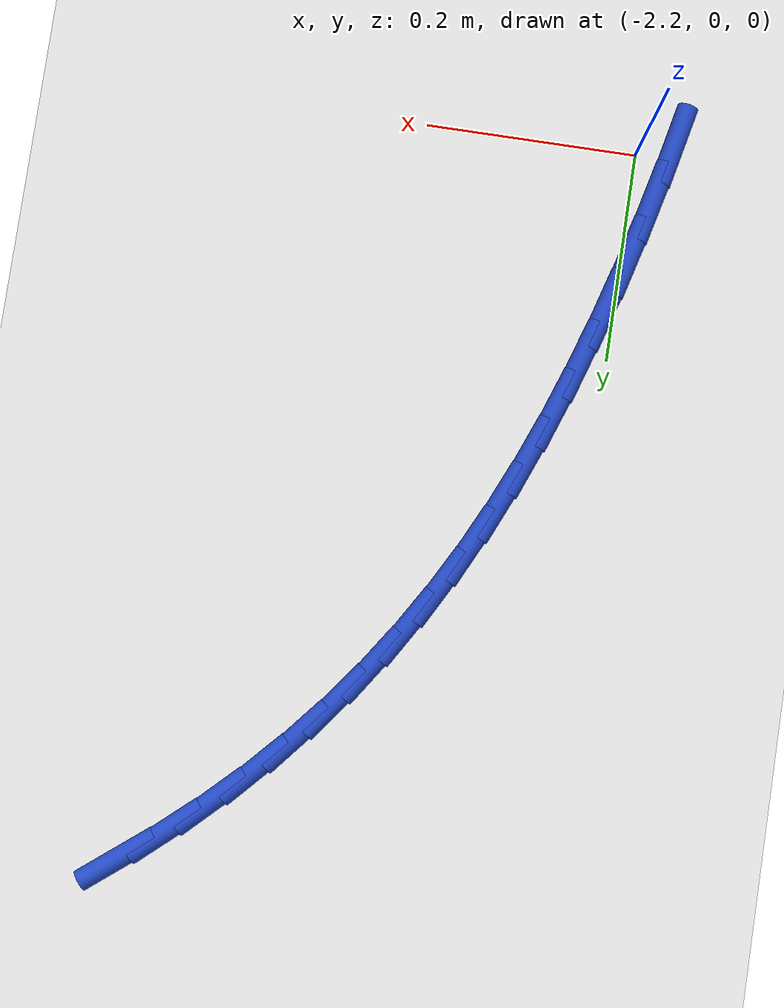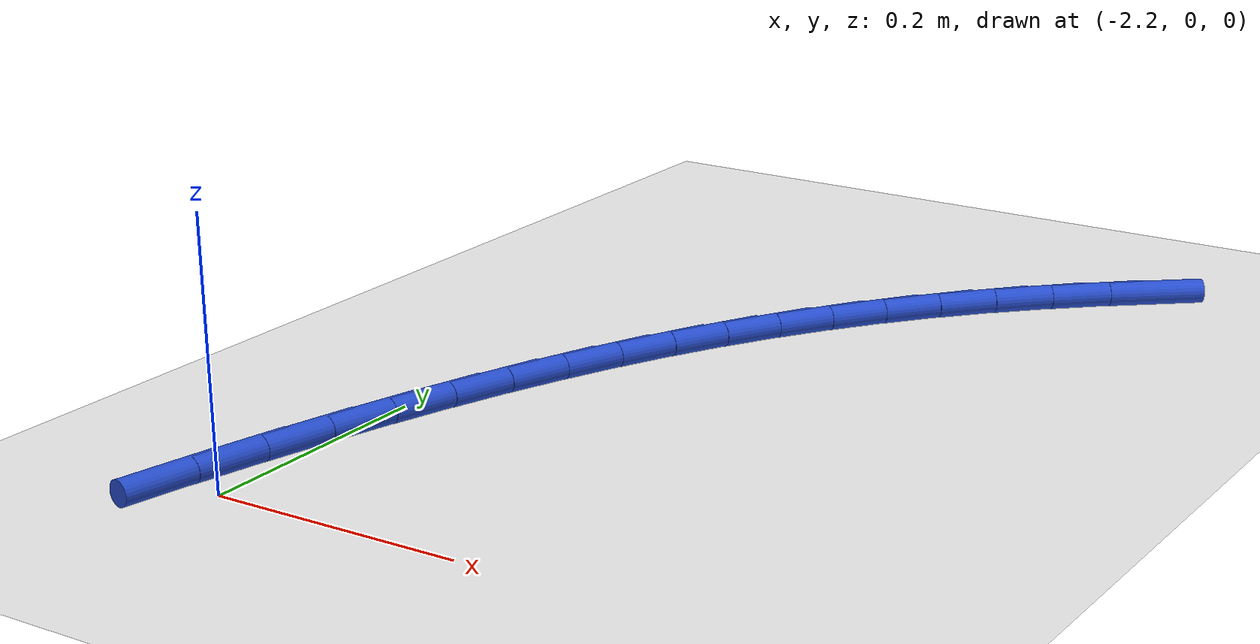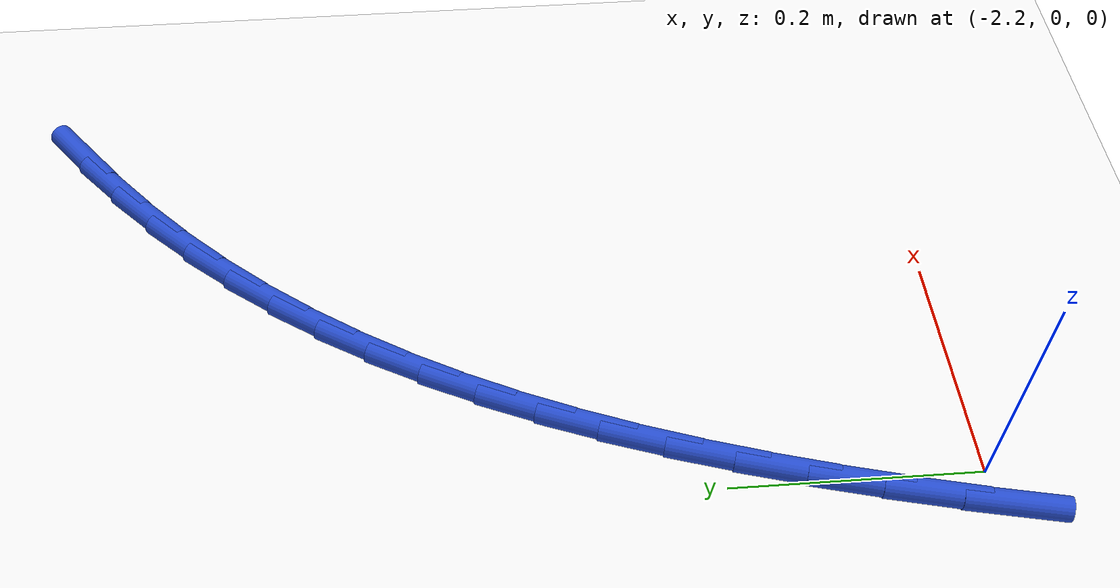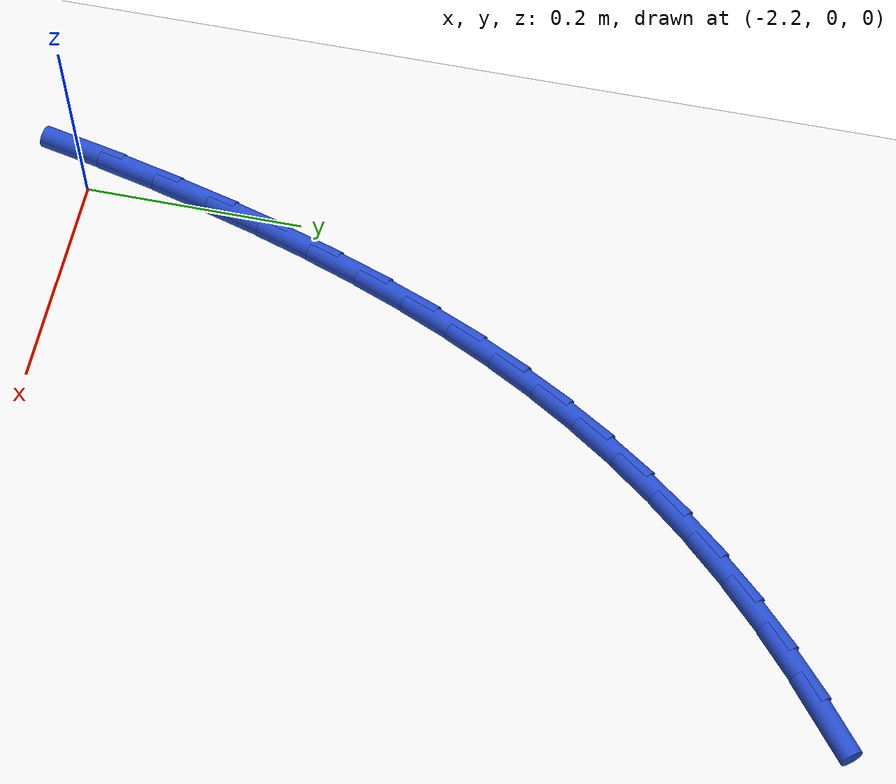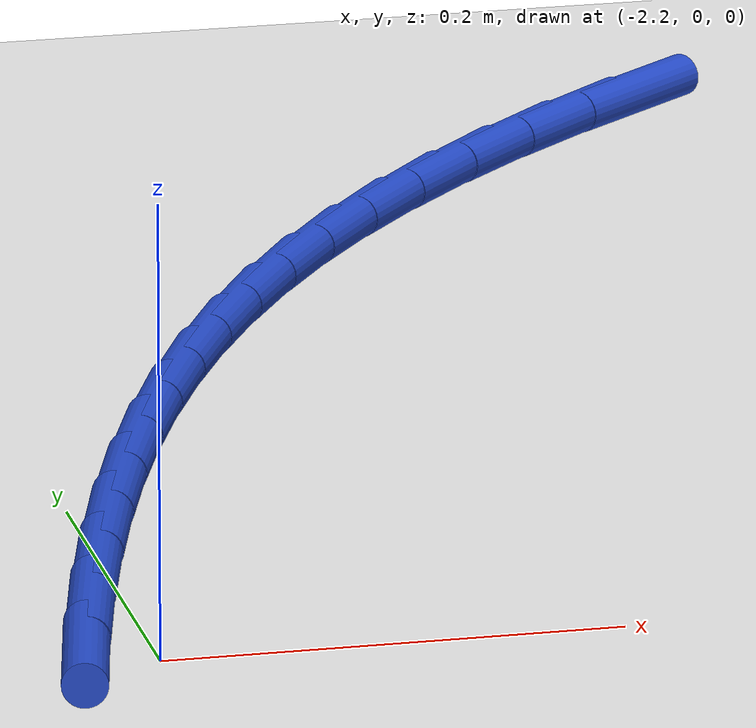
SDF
<sdf version="1.6">
 <world name="default">
  <model name="ground_plane">
   <static>1</static>
   <link name="link">
    <collision name="collision">
     <geometry><plane><normal>0 0 1</normal><size>100 100</size></plane></geometry>
     <surface><friction><ode><mu>100</mu><mu2>50</mu2></ode></friction></surface>
    </collision>
    <visual name="visual">
     <cast_shadows>0</cast_shadows>
     <geometry><plane><normal>0 0 1</normal><size>100 100</size></plane></geometry>
     <material>
      <script><uri>file://media/materials/scripts/gazebo.material</uri><name>Gazebo/WhiteGlow</name></script>
     </material>
    </visual>
   </link>
  </model>
  <model name="line">
   <link name="link_50">
    <pose>-1.8198266802403709 0.7233282383025506 0.01 0 1.57 0.6726121496878623</pose>
    <collision name="collision">
     <geometry><cylinder><radius>0.01</radius><length>0.08</length></cylinder></geometry>
    </collision>
    <visual name="visual">
     <material>
      <script><name>Gazebo/Blue</name><uri>file://media/materials/scripts/gazebo.material</uri></script>
     </material>
     <geometry><cylinder><radius>0.01</radius><length>0.08</length></cylinder></geometry>
    </visual>
   </link>
   <link name="link_51">
    <pose>-1.8590922676655257 0.6920526203002954 0.01 0 1.57 0.7215146821076641</pose>
    <collision name="collision">
     <geometry><cylinder><radius>0.01</radius><length>0.08</length></cylinder></geometry>
    </collision>
    <visual name="visual">
     <material>
      <script><name>Gazebo/Blue</name><uri>file://media/materials/scripts/gazebo.material</uri></script>
     </material>
     <geometry><cylinder><radius>0.01</radius><length>0.08</length></cylinder></geometry>
    </visual>
   </link>
   <link name="link_52">
    <pose>-1.8964386403735027 0.6591970997913577 0.01 0 1.57 0.7715987007077882</pose>
    <collision name="collision">
     <geometry><cylinder><radius>0.01</radius><length>0.08</length></cylinder></geometry>
    </collision>
    <visual name="visual">
     <material>
      <script><name>Gazebo/Blue</name><uri>file://media/materials/scripts/gazebo.material</uri></script>
     </material>
     <geometry><cylinder><radius>0.01</radius><length>0.08</length></cylinder></geometry>
    </visual>
   </link>
   <link name="link_53">
    <pose>-1.9316183514721983 0.6249751550480994 0.01 0 1.57 0.8232298959714698</pose>
    <collision name="collision">
     <geometry><cylinder><radius>0.01</radius><length>0.08</length></cylinder></geometry>
    </collision>
    <visual name="visual">
     <material>
      <script><name>Gazebo/Blue</name><uri>file://media/materials/scripts/gazebo.material</uri></script>
     </material>
     <geometry><cylinder><radius>0.01</radius><length>0.08</length></cylinder></geometry>
    </visual>
   </link>
   <link name="link_54">
    <pose>-1.9644818859466915 0.5895259994869505 0.01 0 1.57 0.8754490096621762</pose>
    <collision name="collision">
     <geometry><cylinder><radius>0.01</radius><length>0.08</length></cylinder></geometry>
    </collision>
    <visual name="visual">
     <material>
      <script><name>Gazebo/Blue</name><uri>file://media/materials/scripts/gazebo.material</uri></script>
     </material>
     <geometry><cylinder><radius>0.01</radius><length>0.08</length></cylinder></geometry>
    </visual>
   </link>
   <link name="link_55">
    <pose>-1.9951179968079762 0.5528081603052413 0.01 0 1.57 0.9274336104759239</pose>
    <collision name="collision">
     <geometry><cylinder><radius>0.01</radius><length>0.08</length></cylinder></geometry>
    </collision>
    <visual name="visual">
     <material>
      <script><name>Gazebo/Blue</name><uri>file://media/materials/scripts/gazebo.material</uri></script>
     </material>
     <geometry><cylinder><radius>0.01</radius><length>0.08</length></cylinder></geometry>
    </visual>
   </link>
   <link name="link_56">
    <pose>-2.023650981002434 0.5147532106040802 0.01 0 1.57 0.9784699401962835</pose>
    <collision name="collision">
     <geometry><cylinder><radius>0.01</radius><length>0.08</length></cylinder></geometry>
    </collision>
    <visual name="visual">
     <material>
      <script><name>Gazebo/Blue</name><uri>file://media/materials/scripts/gazebo.material</uri></script>
     </material>
     <geometry><cylinder><radius>0.01</radius><length>0.08</length></cylinder></geometry>
    </visual>
   </link>
   <link name="link_57">
    <pose>-2.0502051354764452 0.4752927234845747 0.01 0 1.57 1.0278846288194967</pose>
    <collision name="collision">
     <geometry><cylinder><radius>0.01</radius><length>0.08</length></cylinder></geometry>
    </collision>
    <visual name="visual">
     <material>
      <script><name>Gazebo/Blue</name><uri>file://media/materials/scripts/gazebo.material</uri></script>
     </material>
     <geometry><cylinder><radius>0.01</radius><length>0.08</length></cylinder></geometry>
    </visual>
   </link>
   <link name="link_58">
    <pose>-2.074904757176392 0.43435827204783317 0.01 0 1.57 1.0750819653784671</pose>
    <collision name="collision">
     <geometry><cylinder><radius>0.01</radius><length>0.08</length></cylinder></geometry>
    </collision>
    <visual name="visual">
     <material>
      <script><name>Gazebo/Blue</name><uri>file://media/materials/scripts/gazebo.material</uri></script>
     </material>
     <geometry><cylinder><radius>0.01</radius><length>0.08</length></cylinder></geometry>
    </visual>
   </link>
   <link name="link_59">
    <pose>-2.0978741430486543 0.3918814293949631 0.01 0 1.57 1.119570774490355</pose>
    <collision name="collision">
     <geometry><cylinder><radius>0.01</radius><length>0.08</length></cylinder></geometry>
    </collision>
    <visual name="visual">
     <material>
      <script><name>Gazebo/Blue</name><uri>file://media/materials/scripts/gazebo.material</uri></script>
     </material>
     <geometry><cylinder><radius>0.01</radius><length>0.08</length></cylinder></geometry>
    </visual>
   </link>
   <link name="link_60">
    <pose>-2.119237590039615 0.3477937686270733 0.01 0 1.57 1.1609786585416302</pose>
    <collision name="collision">
     <geometry><cylinder><radius>0.01</radius><length>0.08</length></cylinder></geometry>
    </collision>
    <visual name="visual">
     <material>
      <script><name>Gazebo/Blue</name><uri>file://media/materials/scripts/gazebo.material</uri></script>
     </material>
     <geometry><cylinder><radius>0.01</radius><length>0.08</length></cylinder></geometry>
    </visual>
   </link>
   <link name="link_61">
    <pose>-2.139119395095654 0.30202686284527075 0.01 0 1.57 1.1990539784446084</pose>
    <collision name="collision">
     <geometry><cylinder><radius>0.01</radius><length>0.08</length></cylinder></geometry>
    </collision>
    <visual name="visual">
     <material>
      <script><name>Gazebo/Blue</name><uri>file://media/materials/scripts/gazebo.material</uri></script>
     </material>
     <geometry><cylinder><radius>0.01</radius><length>0.08</length></cylinder></geometry>
    </visual>
   </link>
   <link name="link_62">
    <pose>-2.157643855163153 0.2545122851506643 0.01 0 1.57 1.2336579102944303</pose>
    <collision name="collision">
     <geometry><cylinder><radius>0.01</radius><length>0.08</length></cylinder></geometry>
    </collision>
    <visual name="visual">
     <material>
      <script><name>Gazebo/Blue</name><uri>file://media/materials/scripts/gazebo.material</uri></script>
     </material>
     <geometry><cylinder><radius>0.01</radius><length>0.08</length></cylinder></geometry>
    </visual>
   </link>
   <link name="link_63">
    <pose>-2.174935267188493 0.2051816086443611 0.01 0 1.57 1.2647498727843163</pose>
    <collision name="collision">
     <geometry><cylinder><radius>0.01</radius><length>0.08</length></cylinder></geometry>
    </collision>
    <visual name="visual">
     <material>
      <script><name>Gazebo/Blue</name><uri>file://media/materials/scripts/gazebo.material</uri></script>
     </material>
     <geometry><cylinder><radius>0.01</radius><length>0.08</length></cylinder></geometry>
    </visual>
   </link>
   <link name="link_64">
    <pose>-2.191117928118057 0.15396640642747011 0.01 0 1.57 1.2923696405302105</pose>
    <collision name="collision">
     <geometry><cylinder><radius>0.01</radius><length>0.08</length></cylinder></geometry>
    </collision>
    <visual name="visual">
     <material>
      <script><name>Gazebo/Blue</name><uri>file://media/materials/scripts/gazebo.material</uri></script>
     </material>
     <geometry><cylinder><radius>0.01</radius><length>0.08</length></cylinder></geometry>
    </visual>
   </link>
   <link name="link_65">
    <pose>-2.206316134898223 0.1007982516010987 0.01 0 1.57 1.3166188629480584</pose>
    <collision name="collision">
     <geometry><cylinder><radius>0.01</radius><length>0.08</length></cylinder></geometry>
    </collision>
    <visual name="visual">
     <material>
      <script><name>Gazebo/Blue</name><uri>file://media/materials/scripts/gazebo.material</uri></script>
     </material>
     <geometry><cylinder><radius>0.01</radius><length>0.08</length></cylinder></geometry>
    </visual>
   </link>
   <link name="link_66">
    <pose>-2.220654184475375 0.04560871726635454 0.01 0 1.57 1.3382843014080097</pose>
    <collision name="collision">
     <geometry><cylinder><radius>0.01</radius><length>0.08</length></cylinder></geometry>
    </collision>
    <visual name="visual">
     <material>
      <script><name>Gazebo/Blue</name><uri>file://media/materials/scripts/gazebo.material</uri></script>
     </material>
     <geometry><cylinder><radius>0.01</radius><length>0.08</length></cylinder></geometry>
    </visual>
   </link>
   <link name="link_67">
    <pose>-2.2341989973262977 -0.011591948873490772 0.01 0 1.57 1.3613842115149624</pose>
    <collision name="collision">
     <geometry><cylinder><radius>0.01</radius><length>0.08</length></cylinder></geometry>
    </collision>
    <visual name="visual">
     <material>
      <script><name>Gazebo/Blue</name><uri>file://media/materials/scripts/gazebo.material</uri></script>
     </material>
     <geometry><cylinder><radius>0.01</radius><length>0.08</length></cylinder></geometry>
    </visual>
   </link>
  </model>
 </world>
</sdf>
